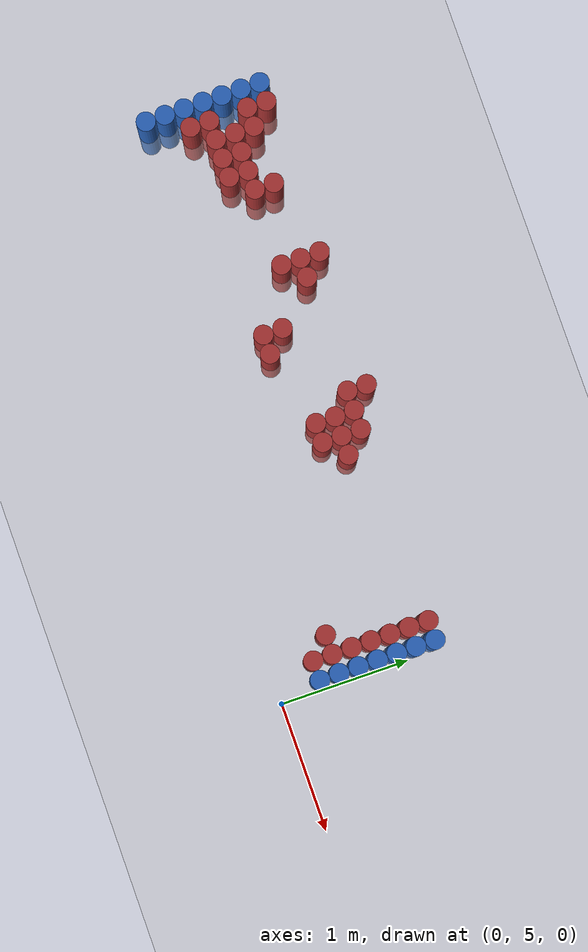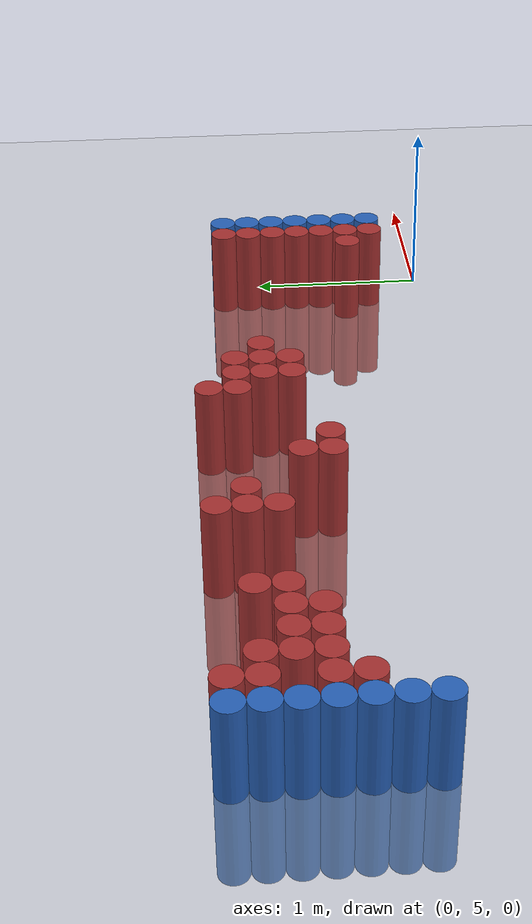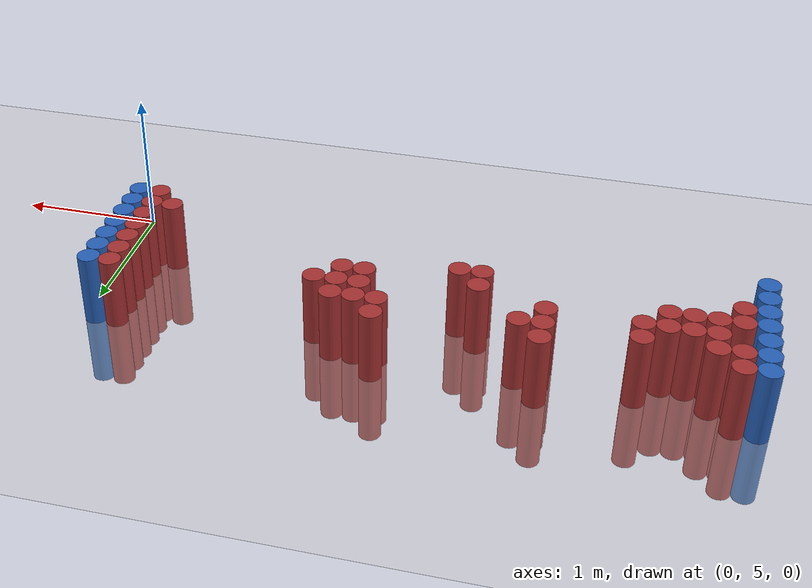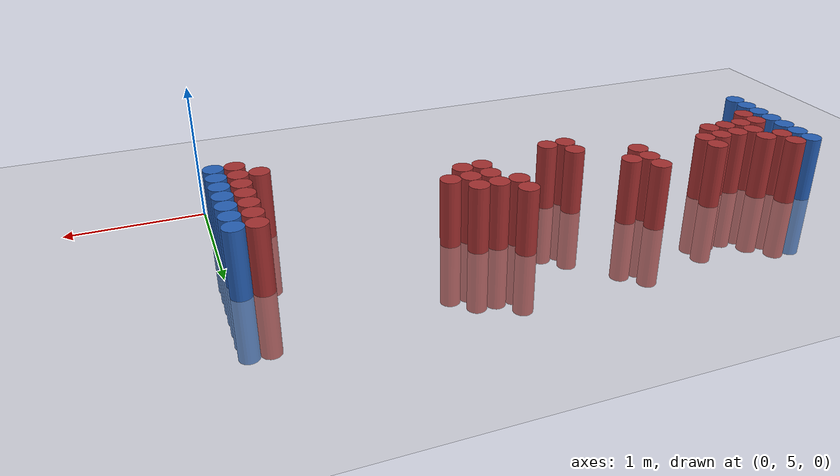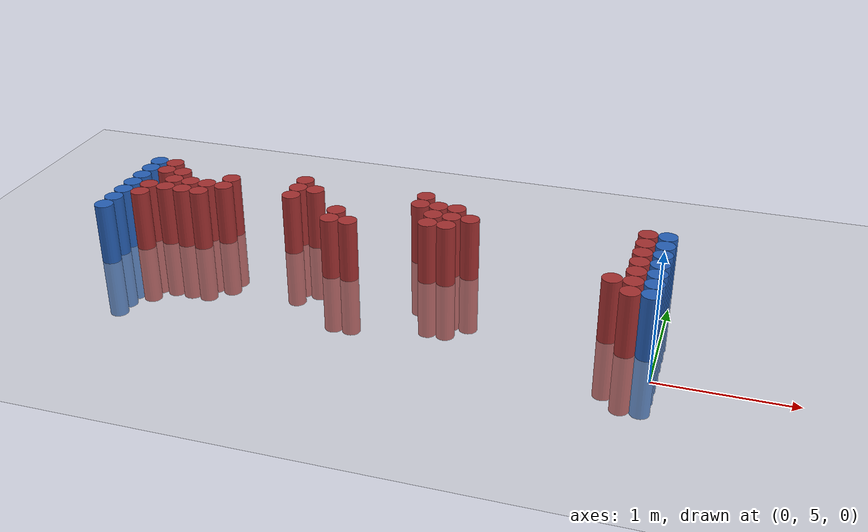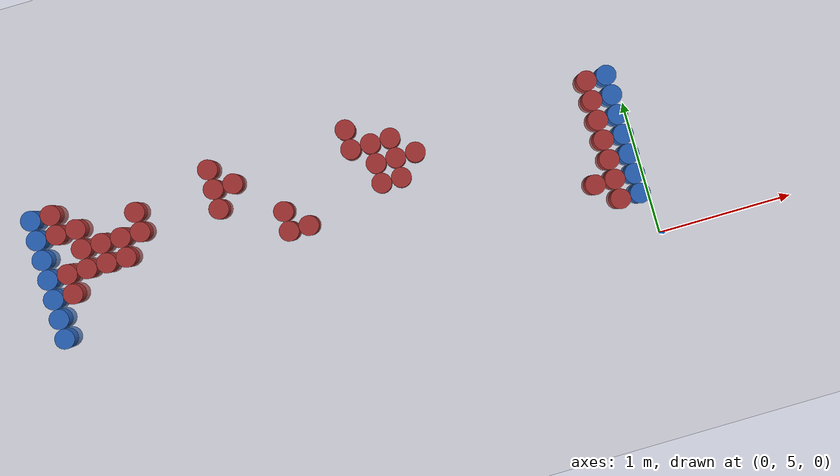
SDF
<sdf version="1.6">
 <world name="default">
  <model name="ground_plane">
   <static>1</static>
   <link name="link">
    <collision name="collision">
     <geometry><plane><normal>0 0 1</normal><size>100 100</size></plane></geometry>
     <surface><friction><ode><mu>100</mu><mu2>50</mu2></ode></friction></surface>
    </collision>
    <visual name="visual">
     <cast_shadows>0</cast_shadows>
     <geometry><plane><normal>0 0 1</normal><size>100 100</size></plane></geometry>
     <material>
      <script><uri>file://media/materials/scripts/gazebo.material</uri><name>Gazebo/Grey</name></script>
     </material>
    </visual>
   </link>
  </model>
  <model name="unit_cylinder_98">
   <static>1</static>
   <pose>-4.425000 5.475000 0.000000 0.000000 0.000000 0.000000</pose>
   <link name="link">
    <inertial>
     <mass>1</mass>
     <inertia><ixx>0.145833</ixx><ixy>0</ixy><ixz>0</ixz><iyy>0.145833</iyy><iyz>0</iyz><izz>0.125</izz></inertia>
    </inertial>
    <collision name="collision">
     <geometry><cylinder><radius>0.075000</radius><length>1</length></cylinder></geometry>
    </collision>
    <visual name="visual">
     <geometry><cylinder><radius>0.075000</radius><length>1</length></cylinder></geometry>
     <material>
      <ambient>0.152000 0.379000 0.720000 1</ambient>
      <diffuse>0.152000 0.379000 0.720000 1</diffuse>
     </material>
     <material>
      <script><name>Gazebo/Grey</name><uri>file://media/materials/scripts/gazebo.material</uri></script>
     </material>
    </visual>
   </link>
  </model>
  <model name="unit_cylinder_99">
   <static>1</static>
   <pose>-4.425000 5.625000 0.000000 0.000000 0.000000 0.000000</pose>
   <link name="link">
    <inertial>
     <mass>1</mass>
     <inertia><ixx>0.145833</ixx><ixy>0</ixy><ixz>0</ixz><iyy>0.145833</iyy><iyz>0</iyz><izz>0.125</izz></inertia>
    </inertial>
    <collision name="collision">
     <geometry><cylinder><radius>0.075000</radius><length>1</length></cylinder></geometry>
    </collision>
    <visual name="visual">
     <geometry><cylinder><radius>0.075000</radius><length>1</length></cylinder></geometry>
     <material>
      <ambient>0.152000 0.379000 0.720000 1</ambient>
      <diffuse>0.152000 0.379000 0.720000 1</diffuse>
     </material>
     <material>
      <script><name>Gazebo/Grey</name><uri>file://media/materials/scripts/gazebo.material</uri></script>
     </material>
    </visual>
   </link>
  </model>
  <model name="unit_cylinder_100">
   <static>1</static>
   <pose>-4.425000 5.775000 0.000000 0.000000 0.000000 0.000000</pose>
   <link name="link">
    <inertial>
     <mass>1</mass>
     <inertia><ixx>0.145833</ixx><ixy>0</ixy><ixz>0</ixz><iyy>0.145833</iyy><iyz>0</iyz><izz>0.125</izz></inertia>
    </inertial>
    <collision name="collision">
     <geometry><cylinder><radius>0.075000</radius><length>1</length></cylinder></geometry>
    </collision>
    <visual name="visual">
     <geometry><cylinder><radius>0.075000</radius><length>1</length></cylinder></geometry>
     <material>
      <ambient>0.152000 0.379000 0.720000 1</ambient>
      <diffuse>0.152000 0.379000 0.720000 1</diffuse>
     </material>
     <material>
      <script><name>Gazebo/Grey</name><uri>file://media/materials/scripts/gazebo.material</uri></script>
     </material>
    </visual>
   </link>
  </model>
  <model name="unit_cylinder_101">
   <static>1</static>
   <pose>-4.425000 5.925000 0.000000 0.000000 0.000000 0.000000</pose>
   <link name="link">
    <inertial>
     <mass>1</mass>
     <inertia><ixx>0.145833</ixx><ixy>0</ixy><ixz>0</ixz><iyy>0.145833</iyy><iyz>0</iyz><izz>0.125</izz></inertia>
    </inertial>
    <collision name="collision">
     <geometry><cylinder><radius>0.075000</radius><length>1</length></cylinder></geometry>
    </collision>
    <visual name="visual">
     <geometry><cylinder><radius>0.075000</radius><length>1</length></cylinder></geometry>
     <material>
      <ambient>0.152000 0.379000 0.720000 1</ambient>
      <diffuse>0.152000 0.379000 0.720000 1</diffuse>
     </material>
     <material>
      <script><name>Gazebo/Grey</name><uri>file://media/materials/scripts/gazebo.material</uri></script>
     </material>
    </visual>
   </link>
  </model>
  <model name="unit_cylinder_102">
   <static>1</static>
   <pose>-4.425000 6.075000 0.000000 0.000000 0.000000 0.000000</pose>
   <link name="link">
    <inertial>
     <mass>1</mass>
     <inertia><ixx>0.145833</ixx><ixy>0</ixy><ixz>0</ixz><iyy>0.145833</iyy><iyz>0</iyz><izz>0.125</izz></inertia>
    </inertial>
    <collision name="collision">
     <geometry><cylinder><radius>0.075000</radius><length>1</length></cylinder></geometry>
    </collision>
    <visual name="visual">
     <geometry><cylinder><radius>0.075000</radius><length>1</length></cylinder></geometry>
     <material>
      <ambient>0.152000 0.379000 0.720000 1</ambient>
      <diffuse>0.152000 0.379000 0.720000 1</diffuse>
     </material>
     <material>
      <script><name>Gazebo/Grey</name><uri>file://media/materials/scripts/gazebo.material</uri></script>
     </material>
    </visual>
   </link>
  </model>
  <model name="unit_cylinder_103">
   <static>1</static>
   <pose>-4.425000 6.225000 0.000000 0.000000 0.000000 0.000000</pose>
   <link name="link">
    <inertial>
     <mass>1</mass>
     <inertia><ixx>0.145833</ixx><ixy>0</ixy><ixz>0</ixz><iyy>0.145833</iyy><iyz>0</iyz><izz>0.125</izz></inertia>
    </inertial>
    <collision name="collision">
     <geometry><cylinder><radius>0.075000</radius><length>1</length></cylinder></geometry>
    </collision>
    <visual name="visual">
     <geometry><cylinder><radius>0.075000</radius><length>1</length></cylinder></geometry>
     <material>
      <ambient>0.152000 0.379000 0.720000 1</ambient>
      <diffuse>0.152000 0.379000 0.720000 1</diffuse>
     </material>
     <material>
      <script><name>Gazebo/Grey</name><uri>file://media/materials/scripts/gazebo.material</uri></script>
     </material>
    </visual>
   </link>
  </model>
  <model name="unit_cylinder_104">
   <static>1</static>
   <pose>-4.425000 6.375000 0.000000 0.000000 0.000000 0.000000</pose>
   <link name="link">
    <inertial>
     <mass>1</mass>
     <inertia><ixx>0.145833</ixx><ixy>0</ixy><ixz>0</ixz><iyy>0.145833</iyy><iyz>0</iyz><izz>0.125</izz></inertia>
    </inertial>
    <collision name="collision">
     <geometry><cylinder><radius>0.075000</radius><length>1</length></cylinder></geometry>
    </collision>
    <visual name="visual">
     <geometry><cylinder><radius>0.075000</radius><length>1</length></cylinder></geometry>
     <material>
      <ambient>0.152000 0.379000 0.720000 1</ambient>
      <diffuse>0.152000 0.379000 0.720000 1</diffuse>
     </material>
     <material>
      <script><name>Gazebo/Grey</name><uri>file://media/materials/scripts/gazebo.material</uri></script>
     </material>
    </visual>
   </link>
  </model>
  <model name="unit_cylinder_126">
   <static>1</static>
   <pose>-4.275000 5.775000 0.000000 0.000000 0.000000 0.000000</pose>
   <link name="link">
    <inertial>
     <mass>1</mass>
     <inertia><ixx>0.145833</ixx><ixy>0</ixy><ixz>0</ixz><iyy>0.145833</iyy><iyz>0</iyz><izz>0.125</izz></inertia>
    </inertial>
    <collision name="collision">
     <geometry><cylinder><radius>0.075000</radius><length>1</length></cylinder></geometry>
    </collision>
    <visual name="visual">
     <geometry><cylinder><radius>0.075000</radius><length>1</length></cylinder></geometry>
     <material>
      <ambient>0.648000 0.192000 0.192000 1</ambient>
      <diffuse>0.648000 0.192000 0.192000 1</diffuse>
     </material>
     <material>
      <script><name>Gazebo/Grey</name><uri>file://media/materials/scripts/gazebo.material</uri></script>
     </material>
    </visual>
   </link>
  </model>
  <model name="unit_cylinder_127">
   <static>1</static>
   <pose>-4.275000 5.925000 0.000000 0.000000 0.000000 0.000000</pose>
   <link name="link">
    <inertial>
     <mass>1</mass>
     <inertia><ixx>0.145833</ixx><ixy>0</ixy><ixz>0</ixz><iyy>0.145833</iyy><iyz>0</iyz><izz>0.125</izz></inertia>
    </inertial>
    <collision name="collision">
     <geometry><cylinder><radius>0.075000</radius><length>1</length></cylinder></geometry>
    </collision>
    <visual name="visual">
     <geometry><cylinder><radius>0.075000</radius><length>1</length></cylinder></geometry>
     <material>
      <ambient>0.648000 0.192000 0.192000 1</ambient>
      <diffuse>0.648000 0.192000 0.192000 1</diffuse>
     </material>
     <material>
      <script><name>Gazebo/Grey</name><uri>file://media/materials/scripts/gazebo.material</uri></script>
     </material>
    </visual>
   </link>
  </model>
  <model name="unit_cylinder_128">
   <static>1</static>
   <pose>-4.275000 6.225000 0.000000 0.000000 0.000000 0.000000</pose>
   <link name="link">
    <inertial>
     <mass>1</mass>
     <inertia><ixx>0.145833</ixx><ixy>0</ixy><ixz>0</ixz><iyy>0.145833</iyy><iyz>0</iyz><izz>0.125</izz></inertia>
    </inertial>
    <collision name="collision">
     <geometry><cylinder><radius>0.075000</radius><length>1</length></cylinder></geometry>
    </collision>
    <visual name="visual">
     <geometry><cylinder><radius>0.075000</radius><length>1</length></cylinder></geometry>
     <material>
      <ambient>0.648000 0.192000 0.192000 1</ambient>
      <diffuse>0.648000 0.192000 0.192000 1</diffuse>
     </material>
     <material>
      <script><name>Gazebo/Grey</name><uri>file://media/materials/scripts/gazebo.material</uri></script>
     </material>
    </visual>
   </link>
  </model>
  <model name="unit_cylinder_129">
   <static>1</static>
   <pose>-4.275000 6.375000 0.000000 0.000000 0.000000 0.000000</pose>
   <link name="link">
    <inertial>
     <mass>1</mass>
     <inertia><ixx>0.145833</ixx><ixy>0</ixy><ixz>0</ixz><iyy>0.145833</iyy><iyz>0</iyz><izz>0.125</izz></inertia>
    </inertial>
    <collision name="collision">
     <geometry><cylinder><radius>0.075000</radius><length>1</length></cylinder></geometry>
    </collision>
    <visual name="visual">
     <geometry><cylinder><radius>0.075000</radius><length>1</length></cylinder></geometry>
     <material>
      <ambient>0.648000 0.192000 0.192000 1</ambient>
      <diffuse>0.648000 0.192000 0.192000 1</diffuse>
     </material>
     <material>
      <script><name>Gazebo/Grey</name><uri>file://media/materials/scripts/gazebo.material</uri></script>
     </material>
    </visual>
   </link>
  </model>
  <model name="unit_cylinder_139">
   <static>1</static>
   <pose>-4.125000 5.925000 0.000000 0.000000 0.000000 0.000000</pose>
   <link name="link">
    <inertial>
     <mass>1</mass>
     <inertia><ixx>0.145833</ixx><ixy>0</ixy><ixz>0</ixz><iyy>0.145833</iyy><iyz>0</iyz><izz>0.125</izz></inertia>
    </inertial>
    <collision name="collision">
     <geometry><cylinder><radius>0.075000</radius><length>1</length></cylinder></geometry>
    </collision>
    <visual name="visual">
     <geometry><cylinder><radius>0.075000</radius><length>1</length></cylinder></geometry>
     <material>
      <ambient>0.648000 0.192000 0.192000 1</ambient>
      <diffuse>0.648000 0.192000 0.192000 1</diffuse>
     </material>
     <material>
      <script><name>Gazebo/Grey</name><uri>file://media/materials/scripts/gazebo.material</uri></script>
     </material>
    </visual>
   </link>
  </model>
  <model name="unit_cylinder_140">
   <static>1</static>
   <pose>-4.125000 6.075000 0.000000 0.000000 0.000000 0.000000</pose>
   <link name="link">
    <inertial>
     <mass>1</mass>
     <inertia><ixx>0.145833</ixx><ixy>0</ixy><ixz>0</ixz><iyy>0.145833</iyy><iyz>0</iyz><izz>0.125</izz></inertia>
    </inertial>
    <collision name="collision">
     <geometry><cylinder><radius>0.075000</radius><length>1</length></cylinder></geometry>
    </collision>
    <visual name="visual">
     <geometry><cylinder><radius>0.075000</radius><length>1</length></cylinder></geometry>
     <material>
      <ambient>0.648000 0.192000 0.192000 1</ambient>
      <diffuse>0.648000 0.192000 0.192000 1</diffuse>
     </material>
     <material>
      <script><name>Gazebo/Grey</name><uri>file://media/materials/scripts/gazebo.material</uri></script>
     </material>
    </visual>
   </link>
  </model>
  <model name="unit_cylinder_141">
   <static>1</static>
   <pose>-4.125000 6.225000 0.000000 0.000000 0.000000 0.000000</pose>
   <link name="link">
    <inertial>
     <mass>1</mass>
     <inertia><ixx>0.145833</ixx><ixy>0</ixy><ixz>0</ixz><iyy>0.145833</iyy><iyz>0</iyz><izz>0.125</izz></inertia>
    </inertial>
    <collision name="collision">
     <geometry><cylinder><radius>0.075000</radius><length>1</length></cylinder></geometry>
    </collision>
    <visual name="visual">
     <geometry><cylinder><radius>0.075000</radius><length>1</length></cylinder></geometry>
     <material>
      <ambient>0.648000 0.192000 0.192000 1</ambient>
      <diffuse>0.648000 0.192000 0.192000 1</diffuse>
     </material>
     <material>
      <script><name>Gazebo/Grey</name><uri>file://media/materials/scripts/gazebo.material</uri></script>
     </material>
    </visual>
   </link>
  </model>
  <model name="unit_cylinder_146">
   <static>1</static>
   <pose>-3.975000 5.925000 0.000000 0.000000 0.000000 0.000000</pose>
   <link name="link">
    <inertial>
     <mass>1</mass>
     <inertia><ixx>0.145833</ixx><ixy>0</ixy><ixz>0</ixz><iyy>0.145833</iyy><iyz>0</iyz><izz>0.125</izz></inertia>
    </inertial>
    <collision name="collision">
     <geometry><cylinder><radius>0.075000</radius><length>1</length></cylinder></geometry>
    </collision>
    <visual name="visual">
     <geometry><cylinder><radius>0.075000</radius><length>1</length></cylinder></geometry>
     <material>
      <ambient>0.648000 0.192000 0.192000 1</ambient>
      <diffuse>0.648000 0.192000 0.192000 1</diffuse>
     </material>
     <material>
      <script><name>Gazebo/Grey</name><uri>file://media/materials/scripts/gazebo.material</uri></script>
     </material>
    </visual>
   </link>
  </model>
  <model name="unit_cylinder_147">
   <static>1</static>
   <pose>-3.975000 6.075000 0.000000 0.000000 0.000000 0.000000</pose>
   <link name="link">
    <inertial>
     <mass>1</mass>
     <inertia><ixx>0.145833</ixx><ixy>0</ixy><ixz>0</ixz><iyy>0.145833</iyy><iyz>0</iyz><izz>0.125</izz></inertia>
    </inertial>
    <collision name="collision">
     <geometry><cylinder><radius>0.075000</radius><length>1</length></cylinder></geometry>
    </collision>
    <visual name="visual">
     <geometry><cylinder><radius>0.075000</radius><length>1</length></cylinder></geometry>
     <material>
      <ambient>0.648000 0.192000 0.192000 1</ambient>
      <diffuse>0.648000 0.192000 0.192000 1</diffuse>
     </material>
     <material>
      <script><name>Gazebo/Grey</name><uri>file://media/materials/scripts/gazebo.material</uri></script>
     </material>
    </visual>
   </link>
  </model>
  <model name="unit_cylinder_153">
   <static>1</static>
   <pose>-3.825000 5.925000 0.000000 0.000000 0.000000 0.000000</pose>
   <link name="link">
    <inertial>
     <mass>1</mass>
     <inertia><ixx>0.145833</ixx><ixy>0</ixy><ixz>0</ixz><iyy>0.145833</iyy><iyz>0</iyz><izz>0.125</izz></inertia>
    </inertial>
    <collision name="collision">
     <geometry><cylinder><radius>0.075000</radius><length>1</length></cylinder></geometry>
    </collision>
    <visual name="visual">
     <geometry><cylinder><radius>0.075000</radius><length>1</length></cylinder></geometry>
     <material>
      <ambient>0.648000 0.192000 0.192000 1</ambient>
      <diffuse>0.648000 0.192000 0.192000 1</diffuse>
     </material>
     <material>
      <script><name>Gazebo/Grey</name><uri>file://media/materials/scripts/gazebo.material</uri></script>
     </material>
    </visual>
   </link>
  </model>
  <model name="unit_cylinder_154">
   <static>1</static>
   <pose>-3.825000 6.075000 0.000000 0.000000 0.000000 0.000000</pose>
   <link name="link">
    <inertial>
     <mass>1</mass>
     <inertia><ixx>0.145833</ixx><ixy>0</ixy><ixz>0</ixz><iyy>0.145833</iyy><iyz>0</iyz><izz>0.125</izz></inertia>
    </inertial>
    <collision name="collision">
     <geometry><cylinder><radius>0.075000</radius><length>1</length></cylinder></geometry>
    </collision>
    <visual name="visual">
     <geometry><cylinder><radius>0.075000</radius><length>1</length></cylinder></geometry>
     <material>
      <ambient>0.648000 0.192000 0.192000 1</ambient>
      <diffuse>0.648000 0.192000 0.192000 1</diffuse>
     </material>
     <material>
      <script><name>Gazebo/Grey</name><uri>file://media/materials/scripts/gazebo.material</uri></script>
     </material>
    </visual>
   </link>
  </model>
  <model name="unit_cylinder_165">
   <static>1</static>
   <pose>-3.675000 6.075000 0.000000 0.000000 0.000000 0.000000</pose>
   <link name="link">
    <inertial>
     <mass>1</mass>
     <inertia><ixx>0.145833</ixx><ixy>0</ixy><ixz>0</ixz><iyy>0.145833</iyy><iyz>0</iyz><izz>0.125</izz></inertia>
    </inertial>
    <collision name="collision">
     <geometry><cylinder><radius>0.075000</radius><length>1</length></cylinder></geometry>
    </collision>
    <visual name="visual">
     <geometry><cylinder><radius>0.075000</radius><length>1</length></cylinder></geometry>
     <material>
      <ambient>0.648000 0.192000 0.192000 1</ambient>
      <diffuse>0.648000 0.192000 0.192000 1</diffuse>
     </material>
     <material>
      <script><name>Gazebo/Grey</name><uri>file://media/materials/scripts/gazebo.material</uri></script>
     </material>
    </visual>
   </link>
  </model>
  <model name="unit_cylinder_166">
   <static>1</static>
   <pose>-3.675000 6.225000 0.000000 0.000000 0.000000 0.000000</pose>
   <link name="link">
    <inertial>
     <mass>1</mass>
     <inertia><ixx>0.145833</ixx><ixy>0</ixy><ixz>0</ixz><iyy>0.145833</iyy><iyz>0</iyz><izz>0.125</izz></inertia>
    </inertial>
    <collision name="collision">
     <geometry><cylinder><radius>0.075000</radius><length>1</length></cylinder></geometry>
    </collision>
    <visual name="visual">
     <geometry><cylinder><radius>0.075000</radius><length>1</length></cylinder></geometry>
     <material>
      <ambient>0.648000 0.192000 0.192000 1</ambient>
      <diffuse>0.648000 0.192000 0.192000 1</diffuse>
     </material>
     <material>
      <script><name>Gazebo/Grey</name><uri>file://media/materials/scripts/gazebo.material</uri></script>
     </material>
    </visual>
   </link>
  </model>
  <model name="unit_cylinder_180">
   <static>1</static>
   <pose>-3.075000 6.075000 0.000000 0.000000 0.000000 0.000000</pose>
   <link name="link">
    <inertial>
     <mass>1</mass>
     <inertia><ixx>0.145833</ixx><ixy>0</ixy><ixz>0</ixz><iyy>0.145833</iyy><iyz>0</iyz><izz>0.125</izz></inertia>
    </inertial>
    <collision name="collision">
     <geometry><cylinder><radius>0.075000</radius><length>1</length></cylinder></geometry>
    </collision>
    <visual name="visual">
     <geometry><cylinder><radius>0.075000</radius><length>1</length></cylinder></geometry>
     <material>
      <ambient>0.648000 0.192000 0.192000 1</ambient>
      <diffuse>0.648000 0.192000 0.192000 1</diffuse>
     </material>
     <material>
      <script><name>Gazebo/Grey</name><uri>file://media/materials/scripts/gazebo.material</uri></script>
     </material>
    </visual>
   </link>
  </model>
  <model name="unit_cylinder_181">
   <static>1</static>
   <pose>-3.075000 6.225000 0.000000 0.000000 0.000000 0.000000</pose>
   <link name="link">
    <inertial>
     <mass>1</mass>
     <inertia><ixx>0.145833</ixx><ixy>0</ixy><ixz>0</ixz><iyy>0.145833</iyy><iyz>0</iyz><izz>0.125</izz></inertia>
    </inertial>
    <collision name="collision">
     <geometry><cylinder><radius>0.075000</radius><length>1</length></cylinder></geometry>
    </collision>
    <visual name="visual">
     <geometry><cylinder><radius>0.075000</radius><length>1</length></cylinder></geometry>
     <material>
      <ambient>0.648000 0.192000 0.192000 1</ambient>
      <diffuse>0.648000 0.192000 0.192000 1</diffuse>
     </material>
     <material>
      <script><name>Gazebo/Grey</name><uri>file://media/materials/scripts/gazebo.material</uri></script>
     </material>
    </visual>
   </link>
  </model>
  <model name="unit_cylinder_182">
   <static>1</static>
   <pose>-3.075000 6.375000 0.000000 0.000000 0.000000 0.000000</pose>
   <link name="link">
    <inertial>
     <mass>1</mass>
     <inertia><ixx>0.145833</ixx><ixy>0</ixy><ixz>0</ixz><iyy>0.145833</iyy><iyz>0</iyz><izz>0.125</izz></inertia>
    </inertial>
    <collision name="collision">
     <geometry><cylinder><radius>0.075000</radius><length>1</length></cylinder></geometry>
    </collision>
    <visual name="visual">
     <geometry><cylinder><radius>0.075000</radius><length>1</length></cylinder></geometry>
     <material>
      <ambient>0.648000 0.192000 0.192000 1</ambient>
      <diffuse>0.648000 0.192000 0.192000 1</diffuse>
     </material>
     <material>
      <script><name>Gazebo/Grey</name><uri>file://media/materials/scripts/gazebo.material</uri></script>
     </material>
    </visual>
   </link>
  </model>
  <model name="unit_cylinder_192">
   <static>1</static>
   <pose>-2.925000 6.225000 0.000000 0.000000 0.000000 0.000000</pose>
   <link name="link">
    <inertial>
     <mass>1</mass>
     <inertia><ixx>0.145833</ixx><ixy>0</ixy><ixz>0</ixz><iyy>0.145833</iyy><iyz>0</iyz><izz>0.125</izz></inertia>
    </inertial>
    <collision name="collision">
     <geometry><cylinder><radius>0.075000</radius><length>1</length></cylinder></geometry>
    </collision>
    <visual name="visual">
     <geometry><cylinder><radius>0.075000</radius><length>1</length></cylinder></geometry>
     <material>
      <ambient>0.648000 0.192000 0.192000 1</ambient>
      <diffuse>0.648000 0.192000 0.192000 1</diffuse>
     </material>
     <material>
      <script><name>Gazebo/Grey</name><uri>file://media/materials/scripts/gazebo.material</uri></script>
     </material>
    </visual>
   </link>
  </model>
  <model name="unit_cylinder_204">
   <static>1</static>
   <pose>-2.625000 5.775000 0.000000 0.000000 0.000000 0.000000</pose>
   <link name="link">
    <inertial>
     <mass>1</mass>
     <inertia><ixx>0.145833</ixx><ixy>0</ixy><ixz>0</ixz><iyy>0.145833</iyy><iyz>0</iyz><izz>0.125</izz></inertia>
    </inertial>
    <collision name="collision">
     <geometry><cylinder><radius>0.075000</radius><length>1</length></cylinder></geometry>
    </collision>
    <visual name="visual">
     <geometry><cylinder><radius>0.075000</radius><length>1</length></cylinder></geometry>
     <material>
      <ambient>0.648000 0.192000 0.192000 1</ambient>
      <diffuse>0.648000 0.192000 0.192000 1</diffuse>
     </material>
     <material>
      <script><name>Gazebo/Grey</name><uri>file://media/materials/scripts/gazebo.material</uri></script>
     </material>
    </visual>
   </link>
  </model>
  <model name="unit_cylinder_205">
   <static>1</static>
   <pose>-2.625000 5.925000 0.000000 0.000000 0.000000 0.000000</pose>
   <link name="link">
    <inertial>
     <mass>1</mass>
     <inertia><ixx>0.145833</ixx><ixy>0</ixy><ixz>0</ixz><iyy>0.145833</iyy><iyz>0</iyz><izz>0.125</izz></inertia>
    </inertial>
    <collision name="collision">
     <geometry><cylinder><radius>0.075000</radius><length>1</length></cylinder></geometry>
    </collision>
    <visual name="visual">
     <geometry><cylinder><radius>0.075000</radius><length>1</length></cylinder></geometry>
     <material>
      <ambient>0.648000 0.192000 0.192000 1</ambient>
      <diffuse>0.648000 0.192000 0.192000 1</diffuse>
     </material>
     <material>
      <script><name>Gazebo/Grey</name><uri>file://media/materials/scripts/gazebo.material</uri></script>
     </material>
    </visual>
   </link>
  </model>
  <model name="unit_cylinder_210">
   <static>1</static>
   <pose>-2.475000 5.775000 0.000000 0.000000 0.000000 0.000000</pose>
   <link name="link">
    <inertial>
     <mass>1</mass>
     <inertia><ixx>0.145833</ixx><ixy>0</ixy><ixz>0</ixz><iyy>0.145833</iyy><iyz>0</iyz><izz>0.125</izz></inertia>
    </inertial>
    <collision name="collision">
     <geometry><cylinder><radius>0.075000</radius><length>1</length></cylinder></geometry>
    </collision>
    <visual name="visual">
     <geometry><cylinder><radius>0.075000</radius><length>1</length></cylinder></geometry>
     <material>
      <ambient>0.648000 0.192000 0.192000 1</ambient>
      <diffuse>0.648000 0.192000 0.192000 1</diffuse>
     </material>
     <material>
      <script><name>Gazebo/Grey</name><uri>file://media/materials/scripts/gazebo.material</uri></script>
     </material>
    </visual>
   </link>
  </model>
  <model name="unit_cylinder_220">
   <static>1</static>
   <pose>-2.025000 6.225000 0.000000 0.000000 0.000000 0.000000</pose>
   <link name="link">
    <inertial>
     <mass>1</mass>
     <inertia><ixx>0.145833</ixx><ixy>0</ixy><ixz>0</ixz><iyy>0.145833</iyy><iyz>0</iyz><izz>0.125</izz></inertia>
    </inertial>
    <collision name="collision">
     <geometry><cylinder><radius>0.075000</radius><length>1</length></cylinder></geometry>
    </collision>
    <visual name="visual">
     <geometry><cylinder><radius>0.075000</radius><length>1</length></cylinder></geometry>
     <material>
      <ambient>0.648000 0.192000 0.192000 1</ambient>
      <diffuse>0.648000 0.192000 0.192000 1</diffuse>
     </material>
     <material>
      <script><name>Gazebo/Grey</name><uri>file://media/materials/scripts/gazebo.material</uri></script>
     </material>
    </visual>
   </link>
  </model>
  <model name="unit_cylinder_221">
   <static>1</static>
   <pose>-2.025000 6.375000 0.000000 0.000000 0.000000 0.000000</pose>
   <link name="link">
    <inertial>
     <mass>1</mass>
     <inertia><ixx>0.145833</ixx><ixy>0</ixy><ixz>0</ixz><iyy>0.145833</iyy><iyz>0</iyz><izz>0.125</izz></inertia>
    </inertial>
    <collision name="collision">
     <geometry><cylinder><radius>0.075000</radius><length>1</length></cylinder></geometry>
    </collision>
    <visual name="visual">
     <geometry><cylinder><radius>0.075000</radius><length>1</length></cylinder></geometry>
     <material>
      <ambient>0.648000 0.192000 0.192000 1</ambient>
      <diffuse>0.648000 0.192000 0.192000 1</diffuse>
     </material>
     <material>
      <script><name>Gazebo/Grey</name><uri>file://media/materials/scripts/gazebo.material</uri></script>
     </material>
    </visual>
   </link>
  </model>
  <model name="unit_cylinder_228">
   <static>1</static>
   <pose>-1.875000 5.925000 0.000000 0.000000 0.000000 0.000000</pose>
   <link name="link">
    <inertial>
     <mass>1</mass>
     <inertia><ixx>0.145833</ixx><ixy>0</ixy><ixz>0</ixz><iyy>0.145833</iyy><iyz>0</iyz><izz>0.125</izz></inertia>
    </inertial>
    <collision name="collision">
     <geometry><cylinder><radius>0.075000</radius><length>1</length></cylinder></geometry>
    </collision>
    <visual name="visual">
     <geometry><cylinder><radius>0.075000</radius><length>1</length></cylinder></geometry>
     <material>
      <ambient>0.648000 0.192000 0.192000 1</ambient>
      <diffuse>0.648000 0.192000 0.192000 1</diffuse>
     </material>
     <material>
      <script><name>Gazebo/Grey</name><uri>file://media/materials/scripts/gazebo.material</uri></script>
     </material>
    </visual>
   </link>
  </model>
  <model name="unit_cylinder_229">
   <static>1</static>
   <pose>-1.875000 6.075000 0.000000 0.000000 0.000000 0.000000</pose>
   <link name="link">
    <inertial>
     <mass>1</mass>
     <inertia><ixx>0.145833</ixx><ixy>0</ixy><ixz>0</ixz><iyy>0.145833</iyy><iyz>0</iyz><izz>0.125</izz></inertia>
    </inertial>
    <collision name="collision">
     <geometry><cylinder><radius>0.075000</radius><length>1</length></cylinder></geometry>
    </collision>
    <visual name="visual">
     <geometry><cylinder><radius>0.075000</radius><length>1</length></cylinder></geometry>
     <material>
      <ambient>0.648000 0.192000 0.192000 1</ambient>
      <diffuse>0.648000 0.192000 0.192000 1</diffuse>
     </material>
     <material>
      <script><name>Gazebo/Grey</name><uri>file://media/materials/scripts/gazebo.material</uri></script>
     </material>
    </visual>
   </link>
  </model>
  <model name="unit_cylinder_230">
   <static>1</static>
   <pose>-1.875000 6.225000 0.000000 0.000000 0.000000 0.000000</pose>
   <link name="link">
    <inertial>
     <mass>1</mass>
     <inertia><ixx>0.145833</ixx><ixy>0</ixy><ixz>0</ixz><iyy>0.145833</iyy><iyz>0</iyz><izz>0.125</izz></inertia>
    </inertial>
    <collision name="collision">
     <geometry><cylinder><radius>0.075000</radius><length>1</length></cylinder></geometry>
    </collision>
    <visual name="visual">
     <geometry><cylinder><radius>0.075000</radius><length>1</length></cylinder></geometry>
     <material>
      <ambient>0.648000 0.192000 0.192000 1</ambient>
      <diffuse>0.648000 0.192000 0.192000 1</diffuse>
     </material>
     <material>
      <script><name>Gazebo/Grey</name><uri>file://media/materials/scripts/gazebo.material</uri></script>
     </material>
    </visual>
   </link>
  </model>
  <model name="unit_cylinder_235">
   <static>1</static>
   <pose>-1.725000 5.925000 0.000000 0.000000 0.000000 0.000000</pose>
   <link name="link">
    <inertial>
     <mass>1</mass>
     <inertia><ixx>0.145833</ixx><ixy>0</ixy><ixz>0</ixz><iyy>0.145833</iyy><iyz>0</iyz><izz>0.125</izz></inertia>
    </inertial>
    <collision name="collision">
     <geometry><cylinder><radius>0.075000</radius><length>1</length></cylinder></geometry>
    </collision>
    <visual name="visual">
     <geometry><cylinder><radius>0.075000</radius><length>1</length></cylinder></geometry>
     <material>
      <ambient>0.648000 0.192000 0.192000 1</ambient>
      <diffuse>0.648000 0.192000 0.192000 1</diffuse>
     </material>
     <material>
      <script><name>Gazebo/Grey</name><uri>file://media/materials/scripts/gazebo.material</uri></script>
     </material>
    </visual>
   </link>
  </model>
  <model name="unit_cylinder_236">
   <static>1</static>
   <pose>-1.725000 6.075000 0.000000 0.000000 0.000000 0.000000</pose>
   <link name="link">
    <inertial>
     <mass>1</mass>
     <inertia><ixx>0.145833</ixx><ixy>0</ixy><ixz>0</ixz><iyy>0.145833</iyy><iyz>0</iyz><izz>0.125</izz></inertia>
    </inertial>
    <collision name="collision">
     <geometry><cylinder><radius>0.075000</radius><length>1</length></cylinder></geometry>
    </collision>
    <visual name="visual">
     <geometry><cylinder><radius>0.075000</radius><length>1</length></cylinder></geometry>
     <material>
      <ambient>0.648000 0.192000 0.192000 1</ambient>
      <diffuse>0.648000 0.192000 0.192000 1</diffuse>
     </material>
     <material>
      <script><name>Gazebo/Grey</name><uri>file://media/materials/scripts/gazebo.material</uri></script>
     </material>
    </visual>
   </link>
  </model>
  <model name="unit_cylinder_237">
   <static>1</static>
   <pose>-1.725000 6.225000 0.000000 0.000000 0.000000 0.000000</pose>
   <link name="link">
    <inertial>
     <mass>1</mass>
     <inertia><ixx>0.145833</ixx><ixy>0</ixy><ixz>0</ixz><iyy>0.145833</iyy><iyz>0</iyz><izz>0.125</izz></inertia>
    </inertial>
    <collision name="collision">
     <geometry><cylinder><radius>0.075000</radius><length>1</length></cylinder></geometry>
    </collision>
    <visual name="visual">
     <geometry><cylinder><radius>0.075000</radius><length>1</length></cylinder></geometry>
     <material>
      <ambient>0.648000 0.192000 0.192000 1</ambient>
      <diffuse>0.648000 0.192000 0.192000 1</diffuse>
     </material>
     <material>
      <script><name>Gazebo/Grey</name><uri>file://media/materials/scripts/gazebo.material</uri></script>
     </material>
    </visual>
   </link>
  </model>
  <model name="unit_cylinder_242">
   <static>1</static>
   <pose>-1.575000 6.075000 0.000000 0.000000 0.000000 0.000000</pose>
   <link name="link">
    <inertial>
     <mass>1</mass>
     <inertia><ixx>0.145833</ixx><ixy>0</ixy><ixz>0</ixz><iyy>0.145833</iyy><iyz>0</iyz><izz>0.125</izz></inertia>
    </inertial>
    <collision name="collision">
     <geometry><cylinder><radius>0.075000</radius><length>1</length></cylinder></geometry>
    </collision>
    <visual name="visual">
     <geometry><cylinder><radius>0.075000</radius><length>1</length></cylinder></geometry>
     <material>
      <ambient>0.648000 0.192000 0.192000 1</ambient>
      <diffuse>0.648000 0.192000 0.192000 1</diffuse>
     </material>
     <material>
      <script><name>Gazebo/Grey</name><uri>file://media/materials/scripts/gazebo.material</uri></script>
     </material>
    </visual>
   </link>
  </model>
  <model name="unit_cylinder_255">
   <static>1</static>
   <pose>-0.375000 5.475000 0.000000 0.000000 0.000000 0.000000</pose>
   <link name="link">
    <inertial>
     <mass>1</mass>
     <inertia><ixx>0.145833</ixx><ixy>0</ixy><ixz>0</ixz><iyy>0.145833</iyy><iyz>0</iyz><izz>0.125</izz></inertia>
    </inertial>
    <collision name="collision">
     <geometry><cylinder><radius>0.075000</radius><length>1</length></cylinder></geometry>
    </collision>
    <visual name="visual">
     <geometry><cylinder><radius>0.075000</radius><length>1</length></cylinder></geometry>
     <material>
      <ambient>0.648000 0.192000 0.192000 1</ambient>
      <diffuse>0.648000 0.192000 0.192000 1</diffuse>
     </material>
     <material>
      <script><name>Gazebo/Grey</name><uri>file://media/materials/scripts/gazebo.material</uri></script>
     </material>
    </visual>
   </link>
  </model>
  <model name="unit_cylinder_256">
   <static>1</static>
   <pose>-0.225000 5.325000 0.000000 0.000000 0.000000 0.000000</pose>
   <link name="link">
    <inertial>
     <mass>1</mass>
     <inertia><ixx>0.145833</ixx><ixy>0</ixy><ixz>0</ixz><iyy>0.145833</iyy><iyz>0</iyz><izz>0.125</izz></inertia>
    </inertial>
    <collision name="collision">
     <geometry><cylinder><radius>0.075000</radius><length>1</length></cylinder></geometry>
    </collision>
    <visual name="visual">
     <geometry><cylinder><radius>0.075000</radius><length>1</length></cylinder></geometry>
     <material>
      <ambient>0.648000 0.192000 0.192000 1</ambient>
      <diffuse>0.648000 0.192000 0.192000 1</diffuse>
     </material>
     <material>
      <script><name>Gazebo/Grey</name><uri>file://media/materials/scripts/gazebo.material</uri></script>
     </material>
    </visual>
   </link>
  </model>
  <model name="unit_cylinder_257">
   <static>1</static>
   <pose>-0.225000 5.475000 0.000000 0.000000 0.000000 0.000000</pose>
   <link name="link">
    <inertial>
     <mass>1</mass>
     <inertia><ixx>0.145833</ixx><ixy>0</ixy><ixz>0</ixz><iyy>0.145833</iyy><iyz>0</iyz><izz>0.125</izz></inertia>
    </inertial>
    <collision name="collision">
     <geometry><cylinder><radius>0.075000</radius><length>1</length></cylinder></geometry>
    </collision>
    <visual name="visual">
     <geometry><cylinder><radius>0.075000</radius><length>1</length></cylinder></geometry>
     <material>
      <ambient>0.648000 0.192000 0.192000 1</ambient>
      <diffuse>0.648000 0.192000 0.192000 1</diffuse>
     </material>
     <material>
      <script><name>Gazebo/Grey</name><uri>file://media/materials/scripts/gazebo.material</uri></script>
     </material>
    </visual>
   </link>
  </model>
  <model name="unit_cylinder_258">
   <static>1</static>
   <pose>-0.225000 5.625000 0.000000 0.000000 0.000000 0.000000</pose>
   <link name="link">
    <inertial>
     <mass>1</mass>
     <inertia><ixx>0.145833</ixx><ixy>0</ixy><ixz>0</ixz><iyy>0.145833</iyy><iyz>0</iyz><izz>0.125</izz></inertia>
    </inertial>
    <collision name="collision">
     <geometry><cylinder><radius>0.075000</radius><length>1</length></cylinder></geometry>
    </collision>
    <visual name="visual">
     <geometry><cylinder><radius>0.075000</radius><length>1</length></cylinder></geometry>
     <material>
      <ambient>0.648000 0.192000 0.192000 1</ambient>
      <diffuse>0.648000 0.192000 0.192000 1</diffuse>
     </material>
     <material>
      <script><name>Gazebo/Grey</name><uri>file://media/materials/scripts/gazebo.material</uri></script>
     </material>
    </visual>
   </link>
  </model>
  <model name="unit_cylinder_259">
   <static>1</static>
   <pose>-0.225000 5.775000 0.000000 0.000000 0.000000 0.000000</pose>
   <link name="link">
    <inertial>
     <mass>1</mass>
     <inertia><ixx>0.145833</ixx><ixy>0</ixy><ixz>0</ixz><iyy>0.145833</iyy><iyz>0</iyz><izz>0.125</izz></inertia>
    </inertial>
    <collision name="collision">
     <geometry><cylinder><radius>0.075000</radius><length>1</length></cylinder></geometry>
    </collision>
    <visual name="visual">
     <geometry><cylinder><radius>0.075000</radius><length>1</length></cylinder></geometry>
     <material>
      <ambient>0.648000 0.192000 0.192000 1</ambient>
      <diffuse>0.648000 0.192000 0.192000 1</diffuse>
     </material>
     <material>
      <script><name>Gazebo/Grey</name><uri>file://media/materials/scripts/gazebo.material</uri></script>
     </material>
    </visual>
   </link>
  </model>
  <model name="unit_cylinder_260">
   <static>1</static>
   <pose>-0.225000 5.925000 0.000000 0.000000 0.000000 0.000000</pose>
   <link name="link">
    <inertial>
     <mass>1</mass>
     <inertia><ixx>0.145833</ixx><ixy>0</ixy><ixz>0</ixz><iyy>0.145833</iyy><iyz>0</iyz><izz>0.125</izz></inertia>
    </inertial>
    <collision name="collision">
     <geometry><cylinder><radius>0.075000</radius><length>1</length></cylinder></geometry>
    </collision>
    <visual name="visual">
     <geometry><cylinder><radius>0.075000</radius><length>1</length></cylinder></geometry>
     <material>
      <ambient>0.648000 0.192000 0.192000 1</ambient>
      <diffuse>0.648000 0.192000 0.192000 1</diffuse>
     </material>
     <material>
      <script><name>Gazebo/Grey</name><uri>file://media/materials/scripts/gazebo.material</uri></script>
     </material>
    </visual>
   </link>
  </model>
  <model name="unit_cylinder_261">
   <static>1</static>
   <pose>-0.225000 6.075000 0.000000 0.000000 0.000000 0.000000</pose>
   <link name="link">
    <inertial>
     <mass>1</mass>
     <inertia><ixx>0.145833</ixx><ixy>0</ixy><ixz>0</ixz><iyy>0.145833</iyy><iyz>0</iyz><izz>0.125</izz></inertia>
    </inertial>
    <collision name="collision">
     <geometry><cylinder><radius>0.075000</radius><length>1</length></cylinder></geometry>
    </collision>
    <visual name="visual">
     <geometry><cylinder><radius>0.075000</radius><length>1</length></cylinder></geometry>
     <material>
      <ambient>0.648000 0.192000 0.192000 1</ambient>
      <diffuse>0.648000 0.192000 0.192000 1</diffuse>
     </material>
     <material>
      <script><name>Gazebo/Grey</name><uri>file://media/materials/scripts/gazebo.material</uri></script>
     </material>
    </visual>
   </link>
  </model>
  <model name="unit_cylinder_262">
   <static>1</static>
   <pose>-0.225000 6.225000 0.000000 0.000000 0.000000 0.000000</pose>
   <link name="link">
    <inertial>
     <mass>1</mass>
     <inertia><ixx>0.145833</ixx><ixy>0</ixy><ixz>0</ixz><iyy>0.145833</iyy><iyz>0</iyz><izz>0.125</izz></inertia>
    </inertial>
    <collision name="collision">
     <geometry><cylinder><radius>0.075000</radius><length>1</length></cylinder></geometry>
    </collision>
    <visual name="visual">
     <geometry><cylinder><radius>0.075000</radius><length>1</length></cylinder></geometry>
     <material>
      <ambient>0.648000 0.192000 0.192000 1</ambient>
      <diffuse>0.648000 0.192000 0.192000 1</diffuse>
     </material>
     <material>
      <script><name>Gazebo/Grey</name><uri>file://media/materials/scripts/gazebo.material</uri></script>
     </material>
    </visual>
   </link>
  </model>
  <model name="unit_cylinder_276">
   <static>1</static>
   <pose>-0.075000 5.325000 0.000000 0.000000 0.000000 0.000000</pose>
   <link name="link">
    <inertial>
     <mass>1</mass>
     <inertia><ixx>0.145833</ixx><ixy>0</ixy><ixz>0</ixz><iyy>0.145833</iyy><iyz>0</iyz><izz>0.125</izz></inertia>
    </inertial>
    <collision name="collision">
     <geometry><cylinder><radius>0.075000</radius><length>1</length></cylinder></geometry>
    </collision>
    <visual name="visual">
     <geometry><cylinder><radius>0.075000</radius><length>1</length></cylinder></geometry>
     <material>
      <ambient>0.152000 0.379000 0.720000 1</ambient>
      <diffuse>0.152000 0.379000 0.720000 1</diffuse>
     </material>
     <material>
      <script><name>Gazebo/Grey</name><uri>file://media/materials/scripts/gazebo.material</uri></script>
     </material>
    </visual>
   </link>
  </model>
  <model name="unit_cylinder_277">
   <static>1</static>
   <pose>-0.075000 5.475000 0.000000 0.000000 0.000000 0.000000</pose>
   <link name="link">
    <inertial>
     <mass>1</mass>
     <inertia><ixx>0.145833</ixx><ixy>0</ixy><ixz>0</ixz><iyy>0.145833</iyy><iyz>0</iyz><izz>0.125</izz></inertia>
    </inertial>
    <collision name="collision">
     <geometry><cylinder><radius>0.075000</radius><length>1</length></cylinder></geometry>
    </collision>
    <visual name="visual">
     <geometry><cylinder><radius>0.075000</radius><length>1</length></cylinder></geometry>
     <material>
      <ambient>0.152000 0.379000 0.720000 1</ambient>
      <diffuse>0.152000 0.379000 0.720000 1</diffuse>
     </material>
     <material>
      <script><name>Gazebo/Grey</name><uri>file://media/materials/scripts/gazebo.material</uri></script>
     </material>
    </visual>
   </link>
  </model>
  <model name="unit_cylinder_278">
   <static>1</static>
   <pose>-0.075000 5.625000 0.000000 0.000000 0.000000 0.000000</pose>
   <link name="link">
    <inertial>
     <mass>1</mass>
     <inertia><ixx>0.145833</ixx><ixy>0</ixy><ixz>0</ixz><iyy>0.145833</iyy><iyz>0</iyz><izz>0.125</izz></inertia>
    </inertial>
    <collision name="collision">
     <geometry><cylinder><radius>0.075000</radius><length>1</length></cylinder></geometry>
    </collision>
    <visual name="visual">
     <geometry><cylinder><radius>0.075000</radius><length>1</length></cylinder></geometry>
     <material>
      <ambient>0.152000 0.379000 0.720000 1</ambient>
      <diffuse>0.152000 0.379000 0.720000 1</diffuse>
     </material>
     <material>
      <script><name>Gazebo/Grey</name><uri>file://media/materials/scripts/gazebo.material</uri></script>
     </material>
    </visual>
   </link>
  </model>
  <model name="unit_cylinder_279">
   <static>1</static>
   <pose>-0.075000 5.775000 0.000000 0.000000 0.000000 0.000000</pose>
   <link name="link">
    <inertial>
     <mass>1</mass>
     <inertia><ixx>0.145833</ixx><ixy>0</ixy><ixz>0</ixz><iyy>0.145833</iyy><iyz>0</iyz><izz>0.125</izz></inertia>
    </inertial>
    <collision name="collision">
     <geometry><cylinder><radius>0.075000</radius><length>1</length></cylinder></geometry>
    </collision>
    <visual name="visual">
     <geometry><cylinder><radius>0.075000</radius><length>1</length></cylinder></geometry>
     <material>
      <ambient>0.152000 0.379000 0.720000 1</ambient>
      <diffuse>0.152000 0.379000 0.720000 1</diffuse>
     </material>
     <material>
      <script><name>Gazebo/Grey</name><uri>file://media/materials/scripts/gazebo.material</uri></script>
     </material>
    </visual>
   </link>
  </model>
  <model name="unit_cylinder_280">
   <static>1</static>
   <pose>-0.075000 5.925000 0.000000 0.000000 0.000000 0.000000</pose>
   <link name="link">
    <inertial>
     <mass>1</mass>
     <inertia><ixx>0.145833</ixx><ixy>0</ixy><ixz>0</ixz><iyy>0.145833</iyy><iyz>0</iyz><izz>0.125</izz></inertia>
    </inertial>
    <collision name="collision">
     <geometry><cylinder><radius>0.075000</radius><length>1</length></cylinder></geometry>
    </collision>
    <visual name="visual">
     <geometry><cylinder><radius>0.075000</radius><length>1</length></cylinder></geometry>
     <material>
      <ambient>0.152000 0.379000 0.720000 1</ambient>
      <diffuse>0.152000 0.379000 0.720000 1</diffuse>
     </material>
     <material>
      <script><name>Gazebo/Grey</name><uri>file://media/materials/scripts/gazebo.material</uri></script>
     </material>
    </visual>
   </link>
  </model>
  <model name="unit_cylinder_281">
   <static>1</static>
   <pose>-0.075000 6.075000 0.000000 0.000000 0.000000 0.000000</pose>
   <link name="link">
    <inertial>
     <mass>1</mass>
     <inertia><ixx>0.145833</ixx><ixy>0</ixy><ixz>0</ixz><iyy>0.145833</iyy><iyz>0</iyz><izz>0.125</izz></inertia>
    </inertial>
    <collision name="collision">
     <geometry><cylinder><radius>0.075000</radius><length>1</length></cylinder></geometry>
    </collision>
    <visual name="visual">
     <geometry><cylinder><radius>0.075000</radius><length>1</length></cylinder></geometry>
     <material>
      <ambient>0.152000 0.379000 0.720000 1</ambient>
      <diffuse>0.152000 0.379000 0.720000 1</diffuse>
     </material>
     <material>
      <script><name>Gazebo/Grey</name><uri>file://media/materials/scripts/gazebo.material</uri></script>
     </material>
    </visual>
   </link>
  </model>
  <model name="unit_cylinder_282">
   <static>1</static>
   <pose>-0.075000 6.225000 0.000000 0.000000 0.000000 0.000000</pose>
   <link name="link">
    <inertial>
     <mass>1</mass>
     <inertia><ixx>0.145833</ixx><ixy>0</ixy><ixz>0</ixz><iyy>0.145833</iyy><iyz>0</iyz><izz>0.125</izz></inertia>
    </inertial>
    <collision name="collision">
     <geometry><cylinder><radius>0.075000</radius><length>1</length></cylinder></geometry>
    </collision>
    <visual name="visual">
     <geometry><cylinder><radius>0.075000</radius><length>1</length></cylinder></geometry>
     <material>
      <ambient>0.152000 0.379000 0.720000 1</ambient>
      <diffuse>0.152000 0.379000 0.720000 1</diffuse>
     </material>
     <material>
      <script><name>Gazebo/Grey</name><uri>file://media/materials/scripts/gazebo.material</uri></script>
     </material>
    </visual>
   </link>
  </model>
 </world>
</sdf>
